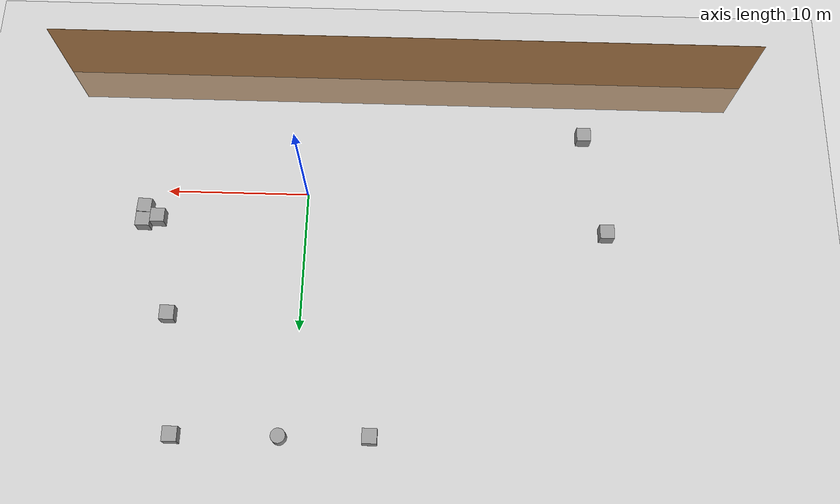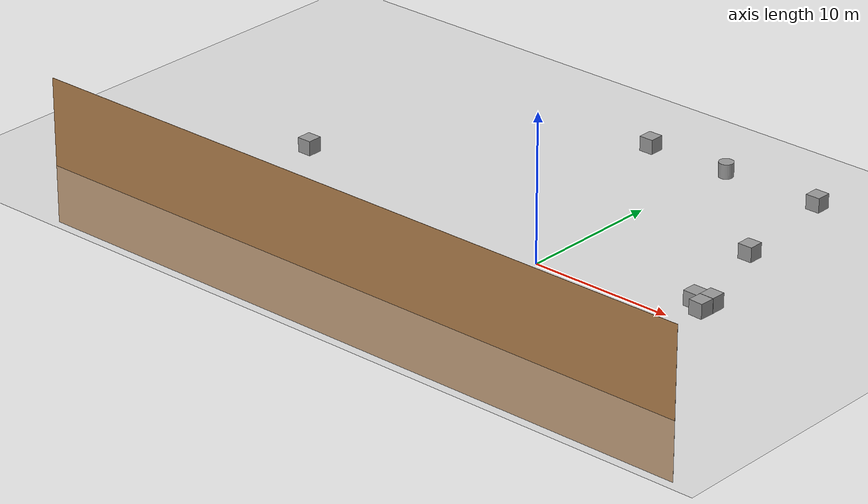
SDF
<sdf version="1.6">
 <world name="default">
  <light name="sun" type="directional">
   <pose>0 0 10 0 -0 0</pose>
   <diffuse>0.8 0.8 0.8 1</diffuse>
   <specular>0.2 0.2 0.2 1</specular>
   <attenuation>
    <range>1000</range>
    <constant>0.9</constant>
    <linear>0.01</linear>
    <quadratic>0.001</quadratic>
   </attenuation>
   <direction>-0.5 0.1 -0.9</direction>
  </light>
  <model name="ground_plane">
   <static>1</static>
   <link name="link">
    <collision name="collision">
     <geometry><plane><normal>0 0 1</normal><size>100 100</size></plane></geometry>
     <surface><friction><ode><mu>100</mu><mu2>50</mu2></ode></friction></surface>
    </collision>
    <visual name="visual">
     <cast_shadows>0</cast_shadows>
     <geometry><plane><normal>0 0 1</normal><size>100 100</size></plane></geometry>
     <material>
      <script><uri>file://media/materials/scripts/gazebo.material</uri><name>Gazebo/Grey</name></script>
     </material>
    </visual>
   </link>
  </model>
  <gravity>0 0 -9.8</gravity>
  <magnetic_field>6e-06 2.3e-05 -4.2e-05</magnetic_field>
  <atmosphere type="adiabatic"/>
  <physics name="default_physics" default="0" type="ode">
   <max_step_size>0.001</max_step_size>
   <real_time_factor>1</real_time_factor>
   <real_time_update_rate>1000</real_time_update_rate>
  </physics>
  <scene><ambient>0.4 0.4 0.4 1</ambient><background>0.7 0.7 0.7 1</background><shadows>1</shadows></scene>
  <spherical_coordinates>
   <surface_model>EARTH_WGS84</surface_model>
   <latitude_deg>0</latitude_deg>
   <longitude_deg>0</longitude_deg>
   <elevation>0</elevation>
   <heading_deg>0</heading_deg>
  </spherical_coordinates>
  <model name="wall_wooden">
   <link name="link">
    <inertial>
     <mass>1</mass>
     <inertia><ixx>1</ixx><ixy>0</ixy><ixz>0</ixz><iyy>1</iyy><iyz>0</iyz><izz>1</izz></inertia>
    </inertial>
    <visual name="visual1">
     <pose>0 0 1 1.57 -0 0</pose>
     <geometry><box><size>50 10.01 0.01</size></box></geometry>
     <material>
      <script><uri>file://media/materials/scripts/gazebo.material</uri><name>Gazebo/Wood</name></script>
      <shader type="pixel"><normal_map>__default__</normal_map></shader>
      <ambient>1 1 1 1</ambient>
      <diffuse>1 1 1 1</diffuse>
      <specular>0.2 0.2 0.2 1</specular>
      <emissive>0 0 0 1</emissive>
     </material>
    </visual>
    <collision name="surface">
     <pose>0 0 1 1.57 -0 0</pose>
     <geometry><box><size>50 10.01 0.01</size></box></geometry>
     <surface>
      <friction>
       <ode><mu>0.6</mu><mu2>0.6</mu2><fdir1>0 0 0</fdir1><slip1>0</slip1><slip2>0</slip2></ode>
       <torsional>
        <coefficient>1</coefficient>
        <patch_radius>0</patch_radius>
        <surface_radius>0</surface_radius>
        <use_patch_radius>1</use_patch_radius>
        <ode><slip>0</slip></ode>
       </torsional>
      </friction>
      <bounce><restitution_coefficient>0</restitution_coefficient><threshold>1e+06</threshold></bounce>
      <contact>
       <collide_without_contact>0</collide_without_contact>
       <collide_without_contact_bitmask>1</collide_without_contact_bitmask>
       <collide_bitmask>1</collide_bitmask>
       <ode>
        <soft_cfm>0</soft_cfm>
        <soft_erp>0.2</soft_erp>
        <kp>1e+13</kp>
        <kd>1</kd>
        <max_vel>0.01</max_vel>
        <min_depth>0</min_depth>
       </ode>
       <bullet>
        <split_impulse>1</split_impulse>
        <split_impulse_penetration_threshold>-0.01</split_impulse_penetration_threshold>
        <soft_cfm>0</soft_cfm>
        <soft_erp>0.2</soft_erp>
        <kp>1e+13</kp>
        <kd>1</kd>
       </bullet>
      </contact>
     </surface>
    </collision>
   </link>
   <static>1</static>
   <pose>-6.69056 -9.54529 0 0 -0 0</pose>
  </model>
  <model name="unit_box">
   <pose>8.97602 9.21606 0.499995 0 1e-05 0</pose>
   <link name="link">
    <inertial>
     <mass>1</mass>
     <inertia>
      <ixx>0.166667</ixx>
      <ixy>0</ixy>
      <ixz>0</ixz>
      <iyy>0.166667</iyy>
      <iyz>0</iyz>
      <izz>0.166667</izz>
     </inertia>
    </inertial>
    <collision name="collision"><geometry><box><size>1 1 1</size></box></geometry></collision>
    <visual name="visual">
     <geometry><box><size>1 1 1</size></box></geometry>
     <material>
      <script><name>Gazebo/Grey</name><uri>file://media/materials/scripts/gazebo.material</uri></script>
     </material>
    </visual>
   </link>
  </model>
  <model name="unit_box_0">
   <pose>7.9052 17.3747 0.499995 1e-05 -0 0</pose>
   <link name="link">
    <inertial>
     <mass>1</mass>
     <inertia>
      <ixx>0.166667</ixx>
      <ixy>0</ixy>
      <ixz>0</ixz>
      <iyy>0.166667</iyy>
      <iyz>0</iyz>
      <izz>0.166667</izz>
     </inertia>
    </inertial>
    <collision name="collision"><geometry><box><size>1 1 1</size></box></geometry></collision>
    <visual name="visual">
     <geometry><box><size>1 1 1</size></box></geometry>
     <material>
      <script><name>Gazebo/Grey</name><uri>file://media/materials/scripts/gazebo.material</uri></script>
     </material>
    </visual>
   </link>
  </model>
  <model name="unit_box_1">
   <pose>-19.7566 -4.91575 0.499995 0 1e-05 0</pose>
   <link name="link">
    <inertial>
     <mass>1</mass>
     <inertia>
      <ixx>0.166667</ixx>
      <ixy>0</ixy>
      <ixz>0</ixz>
      <iyy>0.166667</iyy>
      <iyz>0</iyz>
      <izz>0.166667</izz>
     </inertia>
    </inertial>
    <collision name="collision"><geometry><box><size>1 1 1</size></box></geometry></collision>
    <visual name="visual">
     <geometry><box><size>1 1 1</size></box></geometry>
     <material>
      <script><name>Gazebo/Grey</name><uri>file://media/materials/scripts/gazebo.material</uri></script>
     </material>
    </visual>
   </link>
  </model>
  <model name="unit_cylinder">
   <pose>0.836224 17.304 0.499998 3e-06 -3e-06 0</pose>
   <link name="link">
    <inertial>
     <mass>1</mass>
     <inertia><ixx>0.145833</ixx><ixy>0</ixy><ixz>0</ixz><iyy>0.145833</iyy><iyz>0</iyz><izz>0.125</izz></inertia>
    </inertial>
    <collision name="collision">
     <geometry><cylinder><radius>0.5</radius><length>1</length></cylinder></geometry>
    </collision>
    <visual name="visual">
     <geometry><cylinder><radius>0.5</radius><length>1</length></cylinder></geometry>
     <material>
      <script><name>Gazebo/Grey</name><uri>file://media/materials/scripts/gazebo.material</uri></script>
     </material>
    </visual>
   </link>
  </model>
  <model name="unit_box_2">
   <pose>-5.11848 17.1558 0.499995 0 1e-05 0</pose>
   <link name="link">
    <inertial>
     <mass>1</mass>
     <inertia>
      <ixx>0.166667</ixx>
      <ixy>0</ixy>
      <ixz>0</ixz>
      <iyy>0.166667</iyy>
      <iyz>0</iyz>
      <izz>0.166667</izz>
     </inertia>
    </inertial>
    <collision name="collision"><geometry><box><size>1 1 1</size></box></geometry></collision>
    <visual name="visual">
     <geometry><box><size>1 1 1</size></box></geometry>
     <material>
      <script><name>Gazebo/Grey</name><uri>file://media/materials/scripts/gazebo.material</uri></script>
     </material>
    </visual>
   </link>
  </model>
  <model name="unit_box_3">
   <pose>-21.1596 2.54318 0.499995 1e-05 -0 0</pose>
   <link name="link">
    <inertial>
     <mass>1</mass>
     <inertia>
      <ixx>0.166667</ixx>
      <ixy>0</ixy>
      <ixz>0</ixz>
      <iyy>0.166667</iyy>
      <iyz>0</iyz>
      <izz>0.166667</izz>
     </inertia>
    </inertial>
    <collision name="collision"><geometry><box><size>1 1 1</size></box></geometry></collision>
    <visual name="visual">
     <geometry><box><size>1 1 1</size></box></geometry>
     <material>
      <script><name>Gazebo/Grey</name><uri>file://media/materials/scripts/gazebo.material</uri></script>
     </material>
    </visual>
   </link>
  </model>
  <model name="unit_box_4">
   <pose>11.3884 1.45835 0.499995 -1e-05 -0 -0.051881</pose>
   <link name="link">
    <inertial>
     <mass>1</mass>
     <inertia>
      <ixx>0.166667</ixx>
      <ixy>0</ixy>
      <ixz>0</ixz>
      <iyy>0.166667</iyy>
      <iyz>0</iyz>
      <izz>0.166667</izz>
     </inertia>
    </inertial>
    <collision name="collision"><geometry><box><size>1 1 1</size></box></geometry></collision>
    <visual name="visual">
     <geometry><box><size>1 1 1</size></box></geometry>
     <material>
      <script><name>Gazebo/Grey</name><uri>file://media/materials/scripts/gazebo.material</uri></script>
     </material>
    </visual>
   </link>
  </model>
  <model name="unit_box_5">
   <pose>11.4065 2.47747 0.499995 0 -1e-05 -0.012551</pose>
   <link name="link">
    <inertial>
     <mass>1</mass>
     <inertia>
      <ixx>0.166667</ixx>
      <ixy>0</ixy>
      <ixz>0</ixz>
      <iyy>0.166667</iyy>
      <iyz>0</iyz>
      <izz>0.166667</izz>
     </inertia>
    </inertial>
    <collision name="collision"><geometry><box><size>1 1 1</size></box></geometry></collision>
    <visual name="visual">
     <geometry><box><size>1 1 1</size></box></geometry>
     <material>
      <script><name>Gazebo/Grey</name><uri>file://media/materials/scripts/gazebo.material</uri></script>
     </material>
    </visual>
   </link>
  </model>
  <model name="unit_box_6">
   <pose>10.4019 2.1646 0.499995 0 1e-05 -0.00924</pose>
   <link name="link">
    <inertial>
     <mass>1</mass>
     <inertia>
      <ixx>0.166667</ixx>
      <ixy>0</ixy>
      <ixz>0</ixz>
      <iyy>0.166667</iyy>
      <iyz>0</iyz>
      <izz>0.166667</izz>
     </inertia>
    </inertial>
    <collision name="collision"><geometry><box><size>1 1 1</size></box></geometry></collision>
    <visual name="visual">
     <geometry><box><size>1 1 1</size></box></geometry>
     <material>
      <script><name>Gazebo/Grey</name><uri>file://media/materials/scripts/gazebo.material</uri></script>
     </material>
    </visual>
   </link>
  </model>
 </world>
</sdf>
